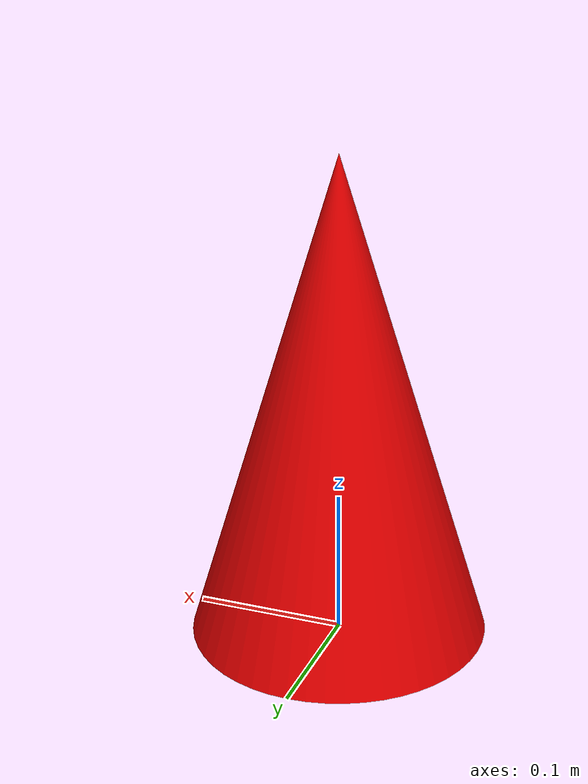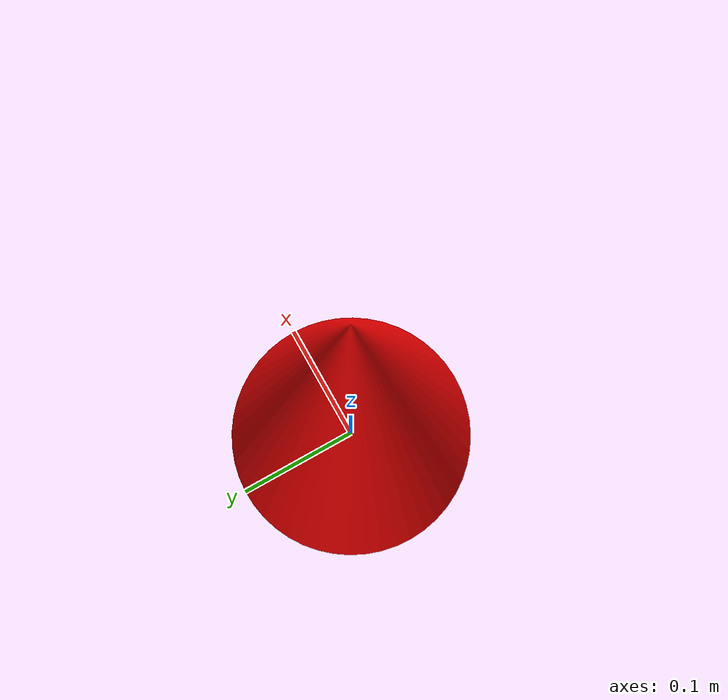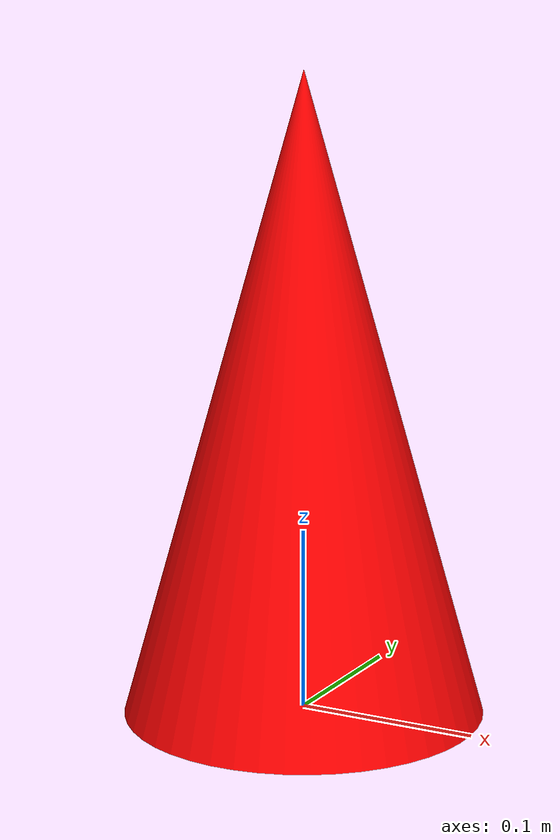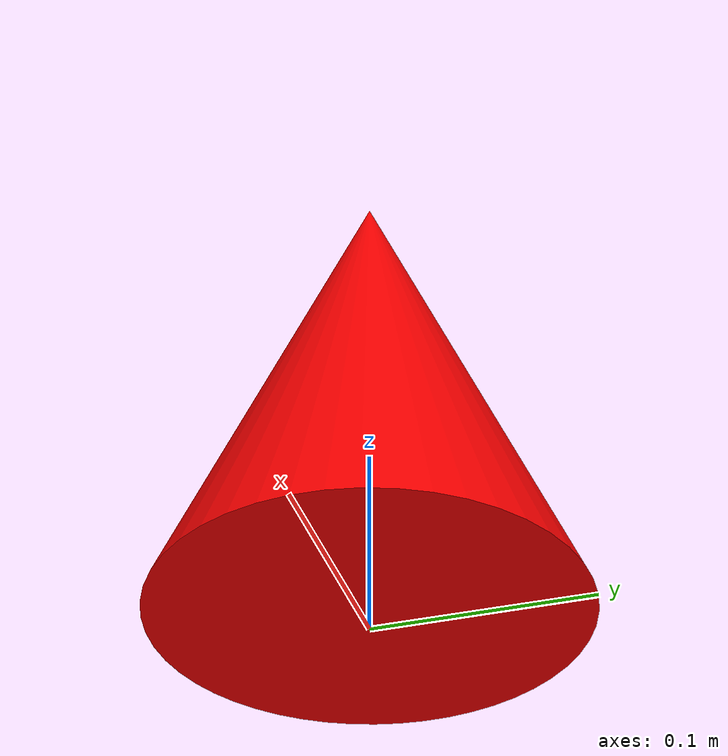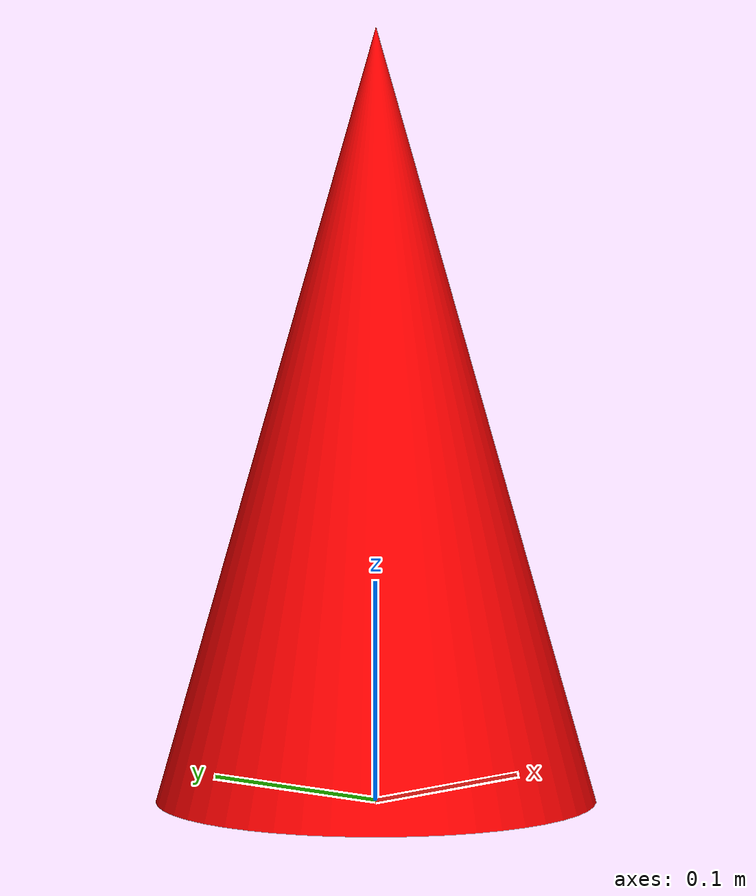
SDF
<?xml version="1.0" ?>
<sdf version="1.6">
  <model name="cono_rojo">
    <static>true</static>
    <link name="link">
      <collision name="collision">
        <!-- Colisión simplificada con un cilindro (más liviano que la mesh) -->
        <pose>0 0 0.175 0 0 0</pose>
        <geometry>
          <cylinder>
            <radius>0.10</radius>
            <length>0.35</length>
          </cylinder>
        </geometry>
      </collision>

      <visual name="visual">
        <geometry>
          <mesh>
            <uri>file:///home/abril/Documents/PrincipiosRobotica/Prueba/meshes/cone.stl</uri>
            <scale>1 1 1</scale>
          </mesh>
        </geometry>
        <material>
          <ambient>1 0 0 1</ambient>
          <diffuse>1 0 0 1</diffuse>
          <specular>0.2 0.2 0.2 1</specular>
          <emissive>0 0 0 1</emissive>
        </material>
      </visual>
    </link>
  </model>
</sdf>
